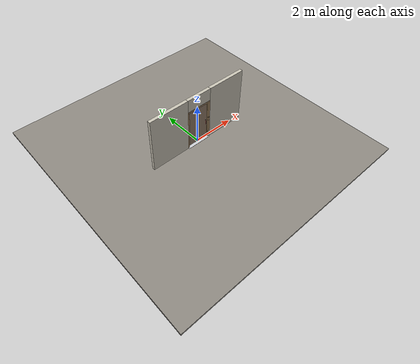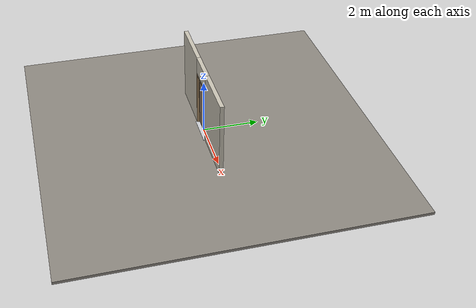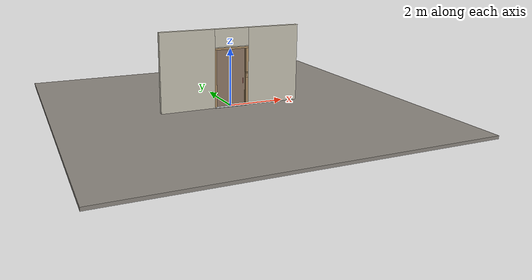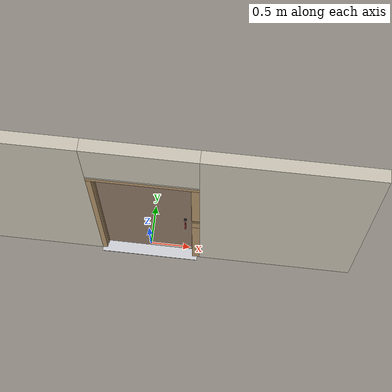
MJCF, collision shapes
<?xml version="1.0" ?>
<mujoco model="db0693_swing_single_minimal">
  <compiler angle="radian" meshdir="../../hardware" texturedir="../../textures" autolimits="true" inertiafromgeom="false"/>
  <option timestep="0.002" integrator="implicitfast" cone="elliptic" impratio="10" noslip_iterations="3">
    <flag multiccd="enable"/>
  </option>
  <size memory="16M"/>
  <default>
    <geom condim="4" solref="0.005 1" solimp="0.95 0.99 0.001"/>
    <joint solreflimit="0.005 1" solimplimit="0.95 0.99 0.001"/>
    <tendon solreflimit="0.005 1"/>
    <equality solref="0.002 1"/>
  </default>
  <visual>
    <headlight ambient="0.4 0.4 0.4" diffuse="0.7 0.7 0.7" specular="0.2 0.2 0.2"/>
    <quality shadowsize="4096"/>
    <map znear="0.01" zfar="60"/>
  </visual>
  <asset>
    <mesh name="thumb_latch_0073ea78ed" file="thumb_latch_0073ea78ed.obj"/>
    <material name="mat_floor" rgba="0.55 0.53 0.5 1" specular="0.2" shininess="0.15" reflectance="0"/>
    <material name="mat_wall" rgba="0.78 0.76 0.7 1" specular="0.2" shininess="0.1" reflectance="0"/>
    <material name="mat_leaf" rgba="0.56 0.475 0.4 1" specular="0.2" shininess="0.5" reflectance="0"/>
    <material name="mat_leaf_panel" rgba="0.515 0.437 0.368 1" specular="0.2" shininess="0.5" reflectance="0"/>
    <material name="mat_hinge" rgba="0.45 0.3 0.22 1" specular="0.5" shininess="0.1" reflectance="0.2"/>
    <material name="mat_op_wrought_iron" rgba="0.08 0.08 0.09 1" specular="0.56" shininess="0.25" reflectance="0.24"/>
    <material name="mat_op_brass" rgba="0.85 0.66 0.3 1" specular="0.8" shininess="0.75" reflectance="0.4"/>
    <material name="mat_frame" rgba="0.7 0.58 0.42 1" specular="0.2" shininess="0.5" reflectance="0"/>
    <material name="mat_threshold" rgba="0.8 0.81 0.83 1" specular="0.8" shininess="0.6" reflectance="0.4"/>
    <texture name="skybox" type="skybox" builtin="gradient" rgb1="0.6 0.7 0.85" rgb2="0.9 0.92 0.95" width="256" height="256"/>
  </asset>
  <worldbody>
    <light name="sun" pos="1.5 -2.5 4" dir="-0.3 0.5 -0.8" directional="true" diffuse="0.8 0.8 0.8" specular="0.3 0.3 0.3" castshadow="true"/>
    <light name="fill" pos="-1.5 2.5 3" dir="0.3 -0.5 -0.7" directional="true" diffuse="0.35 0.35 0.4" castshadow="false"/>
    <camera name="robot_view" pos="0 -2.541625 1.698475" xyaxes="1 0 0 0 0.26963 0.962964" fovy="52"/>
    <camera name="far_view" pos="0 2.454625 1.698475" xyaxes="-1 0 0 0 -0.26963 0.962964" fovy="52"/>
    <camera name="iso" pos="1.898575 -2.141925 2.098175" xyaxes="0.741536 0.670913 0 -0.242917 0.268487 0.932151" fovy="46"/>
    <camera name="detail_handle" pos="0.633 -0.857 1.144" xyaxes="0.97561 0.219512 0 -0.070934 0.315262 0.94635" fovy="38"/>
    <geom name="floor" type="box" size="6 6 0.05" pos="0 0 -0.05" material="mat_floor" group="0" contype="1" conaffinity="1" friction="0.8 0.005 0.0001" density="2400"/>
    <geom name="wall_left" type="box" size="0.9515 0.0725 1.35" pos="-1.5485 -0.0435 1.35" material="mat_wall" group="0" contype="1" conaffinity="1" friction="0.6 0.005 0.0001" density="800"/>
    <geom name="wall_right" type="box" size="0.9365 0.0725 1.35" pos="1.5635 -0.0435 1.35" material="mat_wall" group="0" contype="1" conaffinity="1" friction="0.6 0.005 0.0001" density="800"/>
    <geom name="wall_header" type="box" size="0.612 0.0725 0.306" pos="0.015 -0.0435 2.394" material="mat_wall" group="0" contype="1" conaffinity="1" friction="0.6 0.005 0.0001" density="800"/>
    <geom name="jamb_hinge" type="box" size="0.03 0.0725 0.999" pos="-0.567 -0.0435 0.999" material="mat_frame" group="0" contype="1" conaffinity="1" friction="0.6 0.005 0.0001" density="750"/>
    <geom name="strike_1049_wall_n" type="box" size="0.045 0.07 0.07" pos="0.582 -0.046 1.049" material="mat_frame" group="0" contype="1" conaffinity="1" friction="0.6 0.005 0.0001" density="750"/>
    <geom name="strike_1049_wall_p" type="box" size="0.015 0.003 0.07" pos="0.552 0.047 1.049" material="mat_frame" group="0" contype="1" conaffinity="1" friction="0.6 0.005 0.0001" density="750"/>
    <geom name="strike_1049_back" type="box" size="0.035 0.01 0.07" pos="0.592 0.034 1.049" material="mat_frame" group="0" contype="1" conaffinity="1" friction="0.6 0.005 0.0001" density="750"/>
    <geom name="strike_1164_wall_n" type="box" size="0.045 0.071 0.01" pos="0.582 -0.045 1.164" material="mat_frame" group="0" contype="1" conaffinity="1" friction="0.6 0.005 0.0001" density="750"/>
    <geom name="strike_1164_wall_p" type="box" size="0.022 0.003 0.01" pos="0.559 0.045 1.164" material="mat_frame" group="0" contype="1" conaffinity="1" friction="0.6 0.005 0.0001" density="750"/>
    <geom name="strike_1164_back" type="box" size="0.024 0.008 0.01" pos="0.603 0.034 1.164" material="mat_frame" group="0" contype="1" conaffinity="1" friction="0.6 0.005 0.0001" density="750"/>
    <geom name="jamb_strike_0" type="box" size="0.045 0.0725 0.4895" pos="0.582 -0.0435 0.4895" material="mat_frame" group="0" contype="1" conaffinity="1" friction="0.6 0.005 0.0001" density="750"/>
    <geom name="jamb_strike_1" type="box" size="0.045 0.0725 0.0175" pos="0.582 -0.0435 1.1365" material="mat_frame" group="0" contype="1" conaffinity="1" friction="0.6 0.005 0.0001" density="750"/>
    <geom name="jamb_strike_2" type="box" size="0.045 0.0725 0.412" pos="0.582 -0.0435 1.586" material="mat_frame" group="0" contype="1" conaffinity="1" friction="0.6 0.005 0.0001" density="750"/>
    <geom name="jamb_head" type="box" size="0.612 0.0725 0.03" pos="0.015 -0.0435 2.028" material="mat_frame" group="0" contype="1" conaffinity="1" friction="0.6 0.005 0.0001" density="750"/>
    <geom name="head_stud" type="box" size="0.612 0.0725 0.015" pos="0.015 -0.0435 2.073" material="mat_wall" group="0" contype="1" conaffinity="1" friction="0.6 0.005 0.0001" density="500"/>
    <geom name="stop_hinge" type="box" size="0.0055 0.016 0.999" pos="-0.5315 -0.0385 0.999" material="mat_frame" group="0" contype="1" conaffinity="1" friction="0.6 0.005 0.0001" density="750"/>
    <geom name="stop_strike" type="box" size="0.0055 0.016 0.999" pos="0.5315 -0.0385 0.999" material="mat_frame" group="0" contype="1" conaffinity="1" friction="0.6 0.005 0.0001" density="750"/>
    <geom name="stop_head" type="box" size="0.537 0.016 0.0055" pos="0 -0.0385 1.9925" material="mat_frame" group="0" contype="1" conaffinity="1" friction="0.6 0.005 0.0001" density="750"/>
    <geom name="threshold" type="box" size="0.597 0.1225 0.004" pos="0 -0.0435 0.004" material="mat_threshold" group="0" contype="1" conaffinity="1" friction="0.6 0.005 0.0001" density="2700"/>
    <site name="approach_point" pos="0 -1.5 0" quat="1 0 0 0" size="0.05" rgba="0.2 0.9 0.2 0.5" group="4"/>
    <site name="goal_point" pos="0 1.5 0" quat="1 0 0 0" size="0.05" rgba="0.2 0.9 0.2 0.5" group="4"/>
    <site name="door_plane_center" pos="0 0 0.999" quat="1 0 0 0" size="0.02" rgba="0.2 0.9 0.2 0.5" group="4"/>
    <body name="leaf" pos="-0.537 0 0">
      <inertial pos="0.541986 -0.000506 0.999837" mass="66.273998" quat="-0.498541 0.499826 0.500277 0.501352" diaginertia="6.386550543 21.528998378 27.89134623"/>
      <joint name="leaf_hinge" type="hinge" axis="0 0 1" pos="0.003 0.029 0" limited="true" range="0 2.443461" damping="0.514661" frictionloss="14.407974" armature="0.02"/>
      <geom name="leaf_slab" type="box" size="0.5335 0.022 0.9925" pos="0.5365 0 1.0015" material="mat_leaf" group="0" contype="1" conaffinity="1" friction="0.4 0.005 0.0001" density="1"/>
      <geom name="leaf_suffolk_grip" type="mesh" mesh="thumb_latch_0073ea78ed" pos="0.99 -0.022 0.864" quat="0.707107 0.707107 0 0" material="mat_op_wrought_iron" group="1" contype="0" conaffinity="0" density="7000"/>
      <geom name="leaf_suffolk_grip_col" type="capsule" size="0.008 0.09" pos="0.99 -0.057 0.864" material="mat_op_wrought_iron" group="3" contype="1" conaffinity="1" rgba="0.8 0.3 0.3 0.25" friction="0.7 0.01 0.0001" density="7000"/>
      <site name="leaf_grip_n" pos="0.99 -0.057 0.864" quat="1 0 0 0" size="0.012" rgba="0.2 0.9 0.2 0.5" group="4"/>
      <site name="leaf_edge_mid" pos="1.07 0 0.9925" quat="1 0 0 0" size="0.02" rgba="0.2 0.9 0.2 0.5" group="4"/>
      <body name="leaf_thumb" pos="0.99 -0.022 1.009">
        <inertial pos="0 -0.02 0" mass="0.03528" quat="1 0 0 0" diaginertia="0.000002411 0.000002752 0.000004951"/>
        <joint name="leaf_thumb_hinge" type="hinge" axis="1 0 0" limited="true" range="0 0.3" damping="0.155346" frictionloss="0.032" stiffness="0.6" springref="-0.5" armature="0.01"/>
        <geom name="leaf_thumb_geom" type="box" size="0.015 0.014 0.003" pos="0 -0.02 0" material="mat_op_wrought_iron" group="0" contype="1" conaffinity="1" friction="0.6 0.005 0.0001" density="7000"/>
        <site name="leaf_thumb_push" pos="0 -0.024 0.005" quat="1 0 0 0" size="0.01" rgba="0.2 0.9 0.2 0.5" group="4"/>
      </body>
      <body name="leaf_latch_bar" pos="0.87 0.034 1.004">
        <inertial pos="0.106 0 0" mass="0.25" quat="0 0 0.707107 0.707107" diaginertia="0.000004465 0.000904065 0.000904065"/>
        <joint name="leaf_latch_bar_hinge" type="hinge" axis="0 -1 0" limited="true" range="0 0.6" damping="0.01" frictionloss="0.01" armature="0.005"/>
        <geom name="leaf_latch_bar_geom" type="capsule" size="0.006 0.1" pos="0.106 0 0" quat="0.707107 0 0.707107 0" material="mat_op_wrought_iron" group="0" contype="1" conaffinity="1" friction="0.6 0.005 0.0001" density="7850"/>
      </body>
    </body>
  </worldbody>
  <equality>
    <joint name="leaf_thumb_couple" joint1="leaf_latch_bar_hinge" joint2="leaf_thumb_hinge" polycoef="0 2 0 0 0" active="true"/>
  </equality>
  <sensor>
    <jointpos name="leaf_hinge_pos" joint="leaf_hinge"/>
    <jointvel name="leaf_hinge_vel" joint="leaf_hinge"/>
    <jointpos name="leaf_thumb_hinge_pos" joint="leaf_thumb_hinge"/>
    <jointvel name="leaf_thumb_hinge_vel" joint="leaf_thumb_hinge"/>
    <jointpos name="leaf_latch_bar_hinge_pos" joint="leaf_latch_bar_hinge"/>
    <jointvel name="leaf_latch_bar_hinge_vel" joint="leaf_latch_bar_hinge"/>
  </sensor>
</mujoco>
